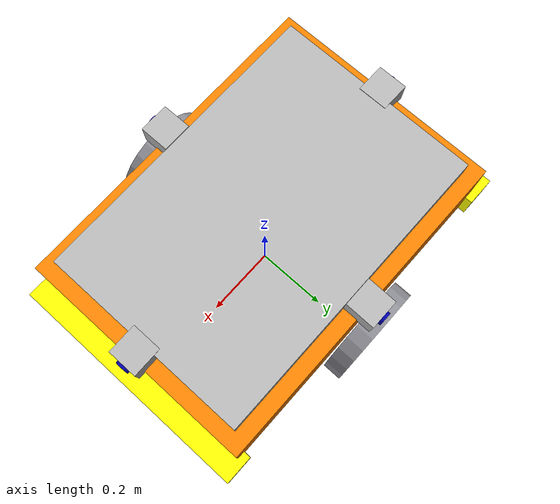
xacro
<?xml version="1.0"?>
<robot xmlns:xacro="http://www.ros.org/wiki/xacro" name="$(arg robot_name)">

  <xacro:arg name="robot_name" default="warehouse_agv"/>
  <xacro:arg name="namespace" default="/agv"/>
  <xacro:arg name="publish_odom_tf" default="true"/>
  <xacro:arg name="chassis_length" default="0.90"/>
  <xacro:arg name="chassis_width" default="0.64"/>
  <xacro:arg name="chassis_height" default="0.24"/>
  <xacro:arg name="wheel_radius" default="0.14"/>
  <xacro:arg name="wheel_width" default="0.05"/>
  <xacro:arg name="wheel_separation" default="0.704"/>
  <xacro:arg name="camera_height" default="0.14"/>
  <xacro:arg name="camera_pitch" default="0.034906585"/>
  <xacro:arg name="bottom_camera_x" default="0.0"/>
  <xacro:arg name="bottom_camera_y" default="0.0"/>
  <xacro:arg name="bottom_camera_update_rate" default="15.0"/>
  <xacro:arg name="bottom_camera_image_width" default="640"/>
  <xacro:arg name="bottom_camera_image_height" default="480"/>
  <xacro:arg name="bottom_camera_horizontal_fov" default="3.141592654"/>
  <xacro:arg name="bottom_camera_lens_cutoff" default="1.570796327"/>
  <xacro:arg name="bottom_camera_near_clip" default="0.01"/>
  <xacro:arg name="bottom_camera_far_clip" default="20.0"/>
  <xacro:arg name="ground_contact_preload" default="0.002"/>

  <xacro:property name="robot_name" value="$(arg robot_name)"/>
  <xacro:property name="namespace" value="$(arg namespace)"/>

  <xacro:property name="chassis_length" value="$(arg chassis_length)"/>
  <xacro:property name="chassis_width" value="$(arg chassis_width)"/>
  <xacro:property name="chassis_height" value="$(arg chassis_height)"/>
  <xacro:property name="wheel_radius" value="$(arg wheel_radius)"/>
  <xacro:property name="wheel_width" value="$(arg wheel_width)"/>
  <xacro:property name="wheel_separation" value="$(arg wheel_separation)"/>
  <xacro:property name="camera_height" value="$(arg camera_height)"/>
  <xacro:property name="camera_pitch" value="$(arg camera_pitch)"/>
  <xacro:property name="bottom_camera_x" value="$(arg bottom_camera_x)"/>
  <xacro:property name="bottom_camera_y" value="$(arg bottom_camera_y)"/>
  <xacro:property name="bottom_camera_update_rate" value="$(arg bottom_camera_update_rate)"/>
  <xacro:property name="bottom_camera_image_width" value="$(arg bottom_camera_image_width)"/>
  <xacro:property name="bottom_camera_image_height" value="$(arg bottom_camera_image_height)"/>
  <xacro:property name="bottom_camera_horizontal_fov" value="$(arg bottom_camera_horizontal_fov)"/>
  <xacro:property name="bottom_camera_lens_cutoff" value="$(arg bottom_camera_lens_cutoff)"/>
  <xacro:property name="bottom_camera_near_clip" value="$(arg bottom_camera_near_clip)"/>
  <xacro:property name="bottom_camera_far_clip" value="$(arg bottom_camera_far_clip)"/>
  <xacro:property name="ground_contact_preload" value="$(arg ground_contact_preload)"/>

  <xacro:property name="base_link_height" value="0.22"/>
  <!-- A small preload avoids ODE treating mathematically tangent contacts as airborne. -->
  <xacro:property name="wheel_center_z" value="${wheel_radius - base_link_height - ground_contact_preload}"/>
  <xacro:property name="wheel_y" value="${wheel_separation / 2.0}"/>
  <xacro:property name="wheel_mass" value="3.0"/>
  <xacro:property name="caster_radius" value="0.05"/>
  <xacro:property name="caster_center_z" value="${caster_radius - base_link_height - ground_contact_preload}"/>
  <xacro:property name="caster_mass" value="0.8"/>
  <xacro:property name="camera_fov" value="${120.0 * pi / 180.0}"/>
  <xacro:property name="bottom_camera_mount_z" value="${-chassis_height / 2.0}"/>

  <xacro:include filename="materials.xacro"/>
  <xacro:include filename="macros.xacro"/>
  <xacro:include filename="robot.gazebo.xacro"/>

  <link name="base_footprint"/>

  <xacro:box_link
    name="base_link"
    mass="40.0"
    x="${chassis_length}"
    y="${chassis_width}"
    z="${chassis_height}"
    material="agv_orange"
    gazebo_material="Gazebo/Orange"/>

  <joint name="base_footprint_joint" type="fixed">
    <parent link="base_footprint"/>
    <child link="base_link"/>
    <origin xyz="0 0 ${base_link_height}" rpy="0 0 0"/>
  </joint>

  <xacro:box_link
    name="top_deck_link"
    mass="8.0"
    x="0.82"
    y="0.56"
    z="0.05"
    material="deck_gray"
    gazebo_material="Gazebo/Grey"/>
  <joint name="top_deck_joint" type="fixed">
    <parent link="base_link"/>
    <child link="top_deck_link"/>
    <origin xyz="0 0 0.145" rpy="0 0 0"/>
  </joint>

  <xacro:box_link
    name="front_bumper_link"
    mass="1.2"
    x="0.08"
    y="0.68"
    z="0.08"
    material="safety_yellow"
    gazebo_material="Gazebo/Yellow"/>
  <joint name="front_bumper_joint" type="fixed">
    <parent link="base_link"/>
    <child link="front_bumper_link"/>
    <origin xyz="${chassis_length / 2.0 + 0.02} 0 -0.07" rpy="0 0 0"/>
  </joint>

  <xacro:box_link
    name="rear_bumper_link"
    mass="1.2"
    x="0.08"
    y="0.68"
    z="0.08"
    material="safety_yellow"
    gazebo_material="Gazebo/Yellow"/>
  <joint name="rear_bumper_joint" type="fixed">
    <parent link="base_link"/>
    <child link="rear_bumper_link"/>
    <origin xyz="-${chassis_length / 2.0 + 0.02} 0 -0.07" rpy="0 0 0"/>
  </joint>

  <xacro:drive_wheel side="left" y="${wheel_y}"/>
  <xacro:drive_wheel side="right" y="-${wheel_y}"/>

  <xacro:caster name="caster_front_left" x="0.33" y="0.24"/>
  <xacro:caster name="caster_front_right" x="0.33" y="-0.24"/>
  <xacro:caster name="caster_rear_left" x="-0.33" y="0.24"/>
  <xacro:caster name="caster_rear_right" x="-0.33" y="-0.24"/>

  <link name="imu_link">
    <visual>
      <geometry>
        <box size="0.06 0.06 0.025"/>
      </geometry>
      <material name="sensor_gray"/>
    </visual>
    <collision>
      <geometry>
        <box size="0.06 0.06 0.025"/>
      </geometry>
    </collision>
    <xacro:box_inertial mass="0.08" x="0.06" y="0.06" z="0.025"/>
  </link>
  <gazebo reference="imu_link">
    <material>Gazebo/Grey</material>
    <preserveFixedJoint>true</preserveFixedJoint>
  </gazebo>
  <joint name="imu_joint" type="fixed">
    <parent link="base_link"/>
    <child link="imu_link"/>
    <origin xyz="0 0 0.025" rpy="0 0 0"/>
  </joint>

  <xacro:wide_angle_camera name="camera_front" topic_name="front" xyz="0.43 0 ${camera_height}" yaw="0" pitch="${camera_pitch}" namespace="${namespace}"/>
  <xacro:wide_angle_camera name="camera_rear" topic_name="rear" xyz="-0.43 0 ${camera_height}" yaw="${pi}" pitch="${camera_pitch}" namespace="${namespace}"/>
  <xacro:wide_angle_camera name="camera_left" topic_name="left" xyz="0 0.32 ${camera_height}" yaw="${pi / 2.0}" pitch="${camera_pitch}" namespace="${namespace}"/>
  <xacro:wide_angle_camera name="camera_right" topic_name="right" xyz="0 -0.32 ${camera_height}" yaw="${-pi / 2.0}" pitch="${camera_pitch}" namespace="${namespace}"/>

  <xacro:bottom_fisheye_camera
    name="camera_bottom"
    topic_name="bottom"
    x="${bottom_camera_x}"
    y="${bottom_camera_y}"
    mount_z="${bottom_camera_mount_z}"
    namespace="${namespace}"
    update_rate="${bottom_camera_update_rate}"
    image_width="${bottom_camera_image_width}"
    image_height="${bottom_camera_image_height}"
    horizontal_fov="${bottom_camera_horizontal_fov}"
    lens_cutoff="${bottom_camera_lens_cutoff}"
    near_clip="${bottom_camera_near_clip}"
    far_clip="${bottom_camera_far_clip}"/>

  <xacro:warehouse_agv_gazebo
    robot_name="${robot_name}"
    namespace="${namespace}"
    publish_odom_tf="$(arg publish_odom_tf)"/>

</robot>

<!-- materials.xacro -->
<robot xmlns:xacro="http://www.ros.org/wiki/xacro">

  <material name="agv_orange">
    <color rgba="1.0 0.5 0.0 1.0"/>
  </material>

  <material name="agv_blue_dark">
    <color rgba="0.0 0.0 0.35 1.0"/>
  </material>

  <material name="safety_yellow">
    <color rgba="1.0 1.0 0.0 1.0"/>
  </material>

  <material name="black">
    <color rgba="0.0 0.0 0.0 1.0"/>
  </material>

  <material name="sensor_gray">
    <color rgba="0.7 0.7 0.7 1.0"/>
  </material>

  <material name="lens_glass">
    <color rgba="0.0 0.0 0.65 1.0"/>
  </material>

  <material name="deck_gray">
    <color rgba="0.7 0.7 0.7 1.0"/>
  </material>

  <material name="metal_grey">
    <color rgba="0.55 0.55 0.58 1.0"/>  <!-- 金属灰 -->
  </material>

</robot>

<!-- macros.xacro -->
<robot xmlns:xacro="http://www.ros.org/wiki/xacro">

  <xacro:macro name="box_inertial" params="mass x y z">
    <inertial>
      <mass value="${mass}"/>
      <origin xyz="0 0 0" rpy="0 0 0"/>
      <inertia
        ixx="${mass * (y * y + z * z) / 12.0}"
        ixy="0.0"
        ixz="0.0"
        iyy="${mass * (x * x + z * z) / 12.0}"
        iyz="0.0"
        izz="${mass * (x * x + y * y) / 12.0}"/>
    </inertial>
  </xacro:macro>

  <xacro:macro name="sphere_inertial" params="mass radius">
    <inertial>
      <mass value="${mass}"/>
      <origin xyz="0 0 0" rpy="0 0 0"/>
      <inertia
        ixx="${0.4 * mass * radius * radius}"
        ixy="0.0"
        ixz="0.0"
        iyy="${0.4 * mass * radius * radius}"
        iyz="0.0"
        izz="${0.4 * mass * radius * radius}"/>
    </inertial>
  </xacro:macro>

  <xacro:macro name="wheel_inertial" params="mass radius width">
    <inertial>
      <mass value="${mass}"/>
      <origin xyz="0 0 0" rpy="0 0 0"/>
      <inertia
        ixx="${mass * (3.0 * radius * radius + width * width) / 12.0}"
        ixy="0.0"
        ixz="0.0"
        iyy="${0.5 * mass * radius * radius}"
        iyz="0.0"
        izz="${mass * (3.0 * radius * radius + width * width) / 12.0}"/>
    </inertial>
  </xacro:macro>

  <xacro:macro name="box_link" params="name mass x y z material gazebo_material">
    <link name="${name}">
      <visual>
        <geometry>
          <box size="${x} ${y} ${z}"/>
        </geometry>
        <material name="${material}"/>
      </visual>
      <collision>
        <geometry>
          <box size="${x} ${y} ${z}"/>
        </geometry>
      </collision>
      <xacro:box_inertial mass="${mass}" x="${x}" y="${y}" z="${z}"/>
    </link>
    <gazebo reference="${name}">
      <material>${gazebo_material}</material>
    </gazebo>
  </xacro:macro>

  <xacro:macro name="drive_wheel" params="side y">
    <link name="${side}_drive_wheel_link">
      <visual>
        <origin xyz="0 0 0" rpy="${pi / 2.0} 0 0"/>
        <geometry>
          <cylinder radius="${wheel_radius}" length="${wheel_width}"/>
        </geometry>
        <material name="metal_grey"/>
      </visual>
      <collision>
        <origin xyz="0 0 0" rpy="${pi / 2.0} 0 0"/>
        <geometry>
          <cylinder radius="${wheel_radius}" length="${wheel_width}"/>
        </geometry>
      </collision>
      <xacro:wheel_inertial mass="${wheel_mass}" radius="${wheel_radius}" width="${wheel_width}"/>
    </link>

    <joint name="${side}_drive_wheel_joint" type="continuous">
      <parent link="base_link"/>
      <child link="${side}_drive_wheel_link"/>
      <origin xyz="0 ${y} ${wheel_center_z}" rpy="0 0 0"/>
      <axis xyz="0 1 0"/>
      <limit effort="40.0" velocity="20.0"/>
      <dynamics damping="0.15" friction="0.02"/>
    </joint>

    <gazebo reference="${side}_drive_wheel_link">
      <mu1 value="1.5"/>
      <mu2 value="1.5"/>
      <kp value="1000000.0"/>
      <kd value="10.0"/>
      <material>Gazebo/DarkGrey</material>
    </gazebo>
  </xacro:macro>

  <xacro:macro name="caster" params="name x y">
    <link name="${name}_link">
      <visual>
        <geometry>
          <sphere radius="${caster_radius}"/>
        </geometry>
        <material name="metal_grey"/>
      </visual>
      <collision>
        <geometry>
          <sphere radius="${caster_radius}"/>
        </geometry>
      </collision>
      <xacro:sphere_inertial mass="${caster_mass}" radius="${caster_radius}"/>
    </link>

    <gazebo reference="${name}_link">
      <mu1 value="0.15"/>
      <mu2 value="0.15"/>
      <kp value="500000.0"/>
      <kd value="10.0"/>
      <material>Gazebo/DarkGrey</material>
      <preserveFixedJoint>true</preserveFixedJoint>
    </gazebo>

    <joint name="${name}_joint" type="fixed">
      <parent link="base_link"/>
      <child link="${name}_link"/>
      <origin xyz="${x} ${y} ${caster_center_z}" rpy="0 0 0"/>
    </joint>
  </xacro:macro>

  <xacro:macro name="wide_angle_camera" params="name topic_name xyz yaw pitch namespace">
    <link name="${name}_link">
      <visual>
        <geometry>
          <box size="0.08 0.08 0.06"/>
        </geometry>
        <material name="sensor_gray"/>
      </visual>
      <visual>
        <origin xyz="0.044 0 0" rpy="0 ${pi / 2.0} 0"/>
        <geometry>
          <cylinder radius="0.018" length="0.008"/>
        </geometry>
        <material name="lens_glass"/>
      </visual>
      <collision>
        <geometry>
          <box size="0.08 0.08 0.06"/>
        </geometry>
      </collision>
      <xacro:box_inertial mass="0.20" x="0.08" y="0.08" z="0.06"/>
    </link>

    <gazebo reference="${name}_link">
      <material>Gazebo/Grey</material>
      <preserveFixedJoint>true</preserveFixedJoint>
    </gazebo>

    <joint name="${name}_mount_joint" type="fixed">
      <parent link="base_link"/>
      <child link="${name}_link"/>
      <origin xyz="${xyz}" rpy="0 ${pitch} ${yaw}"/>
    </joint>

    <joint name="${name}_optical_joint" type="fixed">
      <parent link="${name}_link"/>
      <child link="${name}_optical_frame"/>
      <origin xyz="0 0 0" rpy="${-pi / 2.0} 0 ${-pi / 2.0}"/>
    </joint>
    <link name="${name}_optical_frame"/>

    <gazebo reference="${name}_link">
      <sensor name="${name}_sensor" type="camera">
        <always_on>true</always_on>
        <update_rate>30.0</update_rate>
        <camera name="${name}">
          <horizontal_fov>${camera_fov}</horizontal_fov>
          <image>
            <width>640</width>
            <height>480</height>
            <format>R8G8B8</format>
          </image>
          <clip>
            <near>0.05</near>
            <far>50.0</far>
          </clip>
          <noise>
            <type>gaussian</type>
            <mean>0.0</mean>
            <stddev>0.003</stddev>
          </noise>
        </camera>
        <plugin name="${name}_camera_plugin" filename="libgazebo_ros_camera.so">
          <robotNamespace>${namespace}/camera</robotNamespace>
          <alwaysOn>true</alwaysOn>
          <updateRate>30.0</updateRate>
          <cameraName>${topic_name}</cameraName>
          <imageTopicName>image_raw</imageTopicName>
          <cameraInfoTopicName>camera_info</cameraInfoTopicName>
          <frameName>${name}_optical_frame</frameName>
          <hackBaseline>0.0</hackBaseline>
          <distortionK1>0.0</distortionK1>
          <distortionK2>0.0</distortionK2>
          <distortionK3>0.0</distortionK3>
          <distortionT1>0.0</distortionT1>
          <distortionT2>0.0</distortionT2>
        </plugin>
      </sensor>
    </gazebo>
  </xacro:macro>

  <xacro:macro
    name="bottom_fisheye_camera"
    params="name topic_name x y mount_z namespace update_rate image_width image_height horizontal_fov lens_cutoff near_clip far_clip">
    <xacro:property name="bottom_body_depth" value="0.045"/>
    <xacro:property name="bottom_body_width" value="0.080"/>
    <xacro:property name="bottom_body_height" value="0.080"/>
    <xacro:property name="bottom_lens_radius" value="0.025"/>
    <xacro:property name="bottom_lens_depth" value="0.004"/>
    <xacro:property name="bottom_light_radius" value="0.032"/>

    <link name="${name}_link">
      <visual>
        <origin xyz="${-bottom_body_depth / 2.0} 0 0" rpy="0 0 0"/>
        <geometry>
          <box size="${bottom_body_depth} ${bottom_body_width} ${bottom_body_height}"/>
        </geometry>
        <material name="sensor_gray"/>
      </visual>
      <visual>
        <origin xyz="${-bottom_lens_depth / 2.0} 0 0" rpy="0 ${pi / 2.0} 0"/>
        <geometry>
          <cylinder radius="${bottom_lens_radius}" length="${bottom_lens_depth}"/>
        </geometry>
        <material name="lens_glass"/>
      </visual>
      <collision>
        <origin xyz="${-bottom_body_depth / 2.0} 0 0" rpy="0 0 0"/>
        <geometry>
          <box size="${bottom_body_depth} ${bottom_body_width} ${bottom_body_height}"/>
        </geometry>
      </collision>
      <inertial>
        <origin xyz="${-bottom_body_depth / 2.0} 0 0" rpy="0 0 0"/>
        <mass value="0.20"/>
        <inertia
          ixx="${0.20 * (bottom_body_width * bottom_body_width + bottom_body_height * bottom_body_height) / 12.0}"
          ixy="0.0"
          ixz="0.0"
          iyy="${0.20 * (bottom_body_depth * bottom_body_depth + bottom_body_height * bottom_body_height) / 12.0}"
          iyz="0.0"
          izz="${0.20 * (bottom_body_depth * bottom_body_depth + bottom_body_width * bottom_body_width) / 12.0}"/>
      </inertial>
    </link>

    <gazebo reference="${name}_link">
      <material>Gazebo/Grey</material>
      <preserveFixedJoint>true</preserveFixedJoint>

      <sensor name="${name}_sensor" type="wideanglecamera">
        <always_on>true</always_on>
        <update_rate>${update_rate}</update_rate>
        <camera name="${name}">
          <horizontal_fov>${horizontal_fov}</horizontal_fov>
          <image>
            <width>${image_width}</width>
            <height>${image_height}</height>
            <format>R8G8B8</format>
          </image>
          <clip>
            <near>${near_clip}</near>
            <far>${far_clip}</far>
          </clip>
          <lens>
            <type>equidistant</type>
            <scale_to_hfov>true</scale_to_hfov>
            <cutoff_angle>${lens_cutoff}</cutoff_angle>
            <env_texture_size>512</env_texture_size>
          </lens>
        </camera>
        <plugin name="${name}_camera_plugin" filename="libgazebo_ros_camera.so">
          <robotNamespace>${namespace}/camera</robotNamespace>
          <alwaysOn>true</alwaysOn>
          <updateRate>${update_rate}</updateRate>
          <cameraName>${topic_name}</cameraName>
          <imageTopicName>image_raw</imageTopicName>
          <cameraInfoTopicName>camera_info</cameraInfoTopicName>
          <frameName>${name}_optical_frame</frameName>
          <hackBaseline>0.0</hackBaseline>
          <distortionK1>0.0</distortionK1>
          <distortionK2>0.0</distortionK2>
          <distortionK3>0.0</distortionK3>
          <distortionT1>0.0</distortionT1>
          <distortionT2>0.0</distortionT2>
        </plugin>
      </sensor>

      <!-- Four invisible white point lights approximate an annular illuminator. -->
      <light name="${name}_ring_light_front" type="point">
        <pose>0 ${bottom_light_radius} 0 0 0 0</pose>
        <diffuse>1 1 1 1</diffuse>
        <specular>1 1 1 1</specular>
        <attenuation>
          <range>1.5</range>
          <constant>0.25</constant>
          <linear>0.35</linear>
          <quadratic>0.10</quadratic>
        </attenuation>
        <cast_shadows>false</cast_shadows>
      </light>
      <light name="${name}_ring_light_rear" type="point">
        <pose>0 -${bottom_light_radius} 0 0 0 0</pose>
        <diffuse>1 1 1 1</diffuse>
        <specular>1 1 1 1</specular>
        <attenuation>
          <range>1.5</range>
          <constant>0.25</constant>
          <linear>0.35</linear>
          <quadratic>0.10</quadratic>
        </attenuation>
        <cast_shadows>false</cast_shadows>
      </light>
      <light name="${name}_ring_light_left" type="point">
        <pose>0 0 ${bottom_light_radius} 0 0 0</pose>
        <diffuse>1 1 1 1</diffuse>
        <specular>1 1 1 1</specular>
        <attenuation>
          <range>1.5</range>
          <constant>0.25</constant>
          <linear>0.35</linear>
          <quadratic>0.10</quadratic>
        </attenuation>
        <cast_shadows>false</cast_shadows>
      </light>
      <light name="${name}_ring_light_right" type="point">
        <pose>0 0 -${bottom_light_radius} 0 0 0</pose>
        <diffuse>1 1 1 1</diffuse>
        <specular>1 1 1 1</specular>
        <attenuation>
          <range>1.5</range>
          <constant>0.25</constant>
          <linear>0.35</linear>
          <quadratic>0.10</quadratic>
        </attenuation>
        <cast_shadows>false</cast_shadows>
      </light>
    </gazebo>

    <joint name="${name}_mount_joint" type="fixed">
      <parent link="base_link"/>
      <child link="${name}_link"/>
      <!-- +X of the camera points straight down; the lens plane is flush with the chassis bottom. -->
      <origin xyz="${x} ${y} ${mount_z}" rpy="0 ${pi / 2.0} 0"/>
    </joint>

    <joint name="${name}_optical_joint" type="fixed">
      <parent link="${name}_link"/>
      <child link="${name}_optical_frame"/>
      <origin xyz="0 0 0" rpy="${-pi / 2.0} 0 ${-pi / 2.0}"/>
    </joint>
    <link name="${name}_optical_frame"/>
  </xacro:macro>

</robot>
